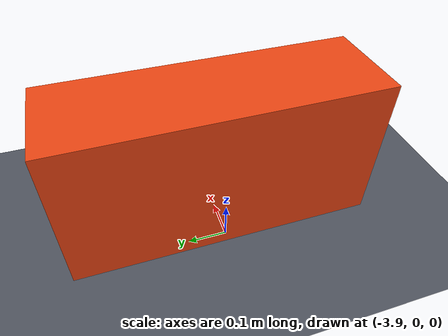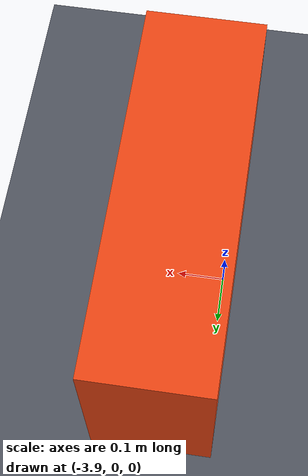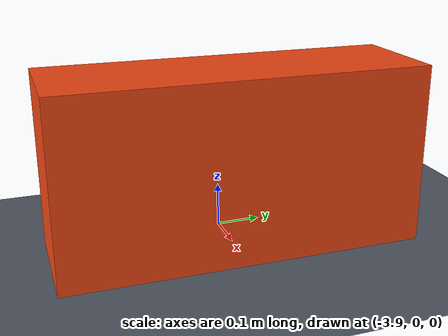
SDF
<?xml version="1.0"?>
<sdf version="1.9">
  <world name="test_world">
    <gravity>0 0 -9.81</gravity>

    <physics name="default_physics" type="ode">
      <max_step_size>0.001</max_step_size>
      <real_time_factor>1.0</real_time_factor>
      <real_time_update_rate>1000</real_time_update_rate>
    </physics>

    <plugin filename="gz-sim-physics-system" name="gz::sim::systems::Physics"/>
    <plugin filename="gz-sim-user-commands-system" name="gz::sim::systems::UserCommands"/>
    <plugin filename="gz-sim-scene-broadcaster-system" name="gz::sim::systems::SceneBroadcaster"/>
    <plugin filename="gz-sim-imu-system" name="gz::sim::systems::Imu"/>
    <plugin filename="gz-sim-sensors-system" name="gz::sim::systems::Sensors">
      <render_engine>ogre2</render_engine>
    </plugin>

    <scene>
      <ambient>0.35 0.35 0.35 1</ambient>
      <background>0.08 0.10 0.14 1</background>
      <shadows>true</shadows>
    </scene>

    <light name="sun" type="directional">
      <pose>0 0 5 0.35 -0.45 0</pose>
      <diffuse>0.9 0.9 0.85 1</diffuse>
      <specular>0.25 0.25 0.25 1</specular>
      <attenuation>
        <range>1000</range>
        <constant>0.9</constant>
        <linear>0.01</linear>
        <quadratic>0.001</quadratic>
      </attenuation>
      <direction>-0.4 0.3 -0.85</direction>
    </light>

    <model name="ground_plane">
      <static>true</static>
      <link name="link">
        <collision name="collision">
          <geometry>
            <plane>
              <normal>0 0 1</normal>
              <size>30 30</size>
            </plane>
          </geometry>
        </collision>
        <visual name="visual">
          <geometry>
            <plane>
              <normal>0 0 1</normal>
              <size>30 30</size>
            </plane>
          </geometry>
          <material>
            <ambient>0.32 0.34 0.38 1</ambient>
            <diffuse>0.32 0.34 0.38 1</diffuse>
            <specular>0.1 0.1 0.1 1</specular>
          </material>
        </visual>
      </link>
    </model>

    <!-- A static obstacle in the LiDAR scan plane, one metre ahead of spawn. -->
    <model name="lidar_test_obstacle">
      <pose>-3.8 0 0.2 0 0 0</pose>
      <static>true</static>
      <link name="link">
        <collision name="collision">
          <geometry>
            <box>
              <size>0.25 0.8 0.4</size>
            </box>
          </geometry>
        </collision>
        <visual name="visual">
          <geometry>
            <box>
              <size>0.25 0.8 0.4</size>
            </box>
          </geometry>
          <material>
            <ambient>0.85 0.22 0.08 1</ambient>
            <diffuse>0.95 0.28 0.08 1</diffuse>
            <specular>0.25 0.1 0.05 1</specular>
          </material>
        </visual>
      </link>
    </model>
  </world>
</sdf>
